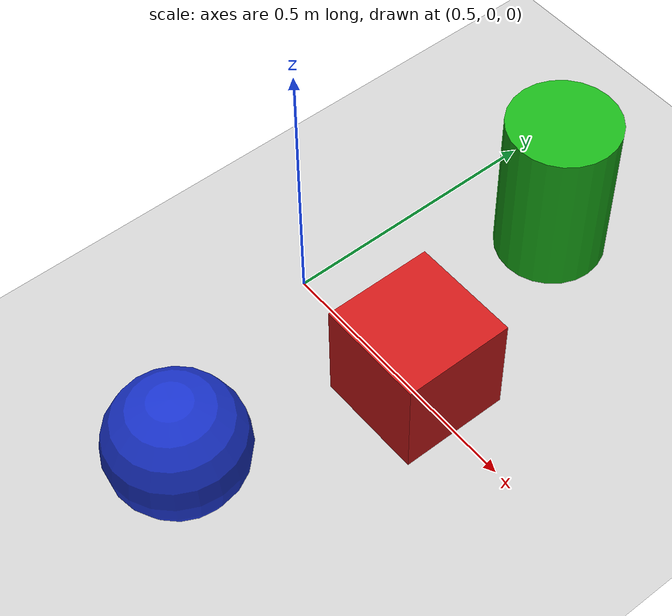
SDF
<?xml version="1.0" ?>
<sdf version="1.6">
  <world name="default">

    <!-- A global light source -->
    <include>
      <uri>model://sun</uri>
    </include>

    <!-- A ground plane -->
    <include>
      <uri>model://ground_plane</uri>
    </include>

    <!-- Some objects in front of the robot for the camera to look at -->
    <model name="red_box">
      <pose>0.8 0.0 0.1 0 0 0</pose>
      <static>true</static>
      <link name="link">
        <collision name="collision">
          <geometry>
            <box><size>0.2 0.2 0.2</size></box>
          </geometry>
        </collision>
        <visual name="visual">
          <geometry>
            <box><size>0.2 0.2 0.2</size></box>
          </geometry>
          <material>
            <ambient>0.8 0.1 0.1 1</ambient>
            <diffuse>0.8 0.1 0.1 1</diffuse>
          </material>
        </visual>
      </link>
    </model>

    <model name="green_cylinder">
      <pose>0.7 0.4 0.15 0 0 0</pose>
      <static>true</static>
      <link name="link">
        <collision name="collision">
          <geometry>
            <cylinder><radius>0.1</radius><length>0.3</length></cylinder>
          </geometry>
        </collision>
        <visual name="visual">
          <geometry>
            <cylinder><radius>0.1</radius><length>0.3</length></cylinder>
          </geometry>
          <material>
            <ambient>0.1 0.7 0.1 1</ambient>
            <diffuse>0.1 0.7 0.1 1</diffuse>
          </material>
        </visual>
      </link>
    </model>

    <model name="blue_sphere">
      <pose>0.7 -0.4 0.12 0 0 0</pose>
      <static>true</static>
      <link name="link">
        <collision name="collision">
          <geometry>
            <sphere><radius>0.12</radius></sphere>
          </geometry>
        </collision>
        <visual name="visual">
          <geometry>
            <sphere><radius>0.12</radius></sphere>
          </geometry>
          <material>
            <ambient>0.1 0.2 0.8 1</ambient>
            <diffuse>0.1 0.2 0.8 1</diffuse>
          </material>
        </visual>
      </link>
    </model>

  </world>
</sdf>
